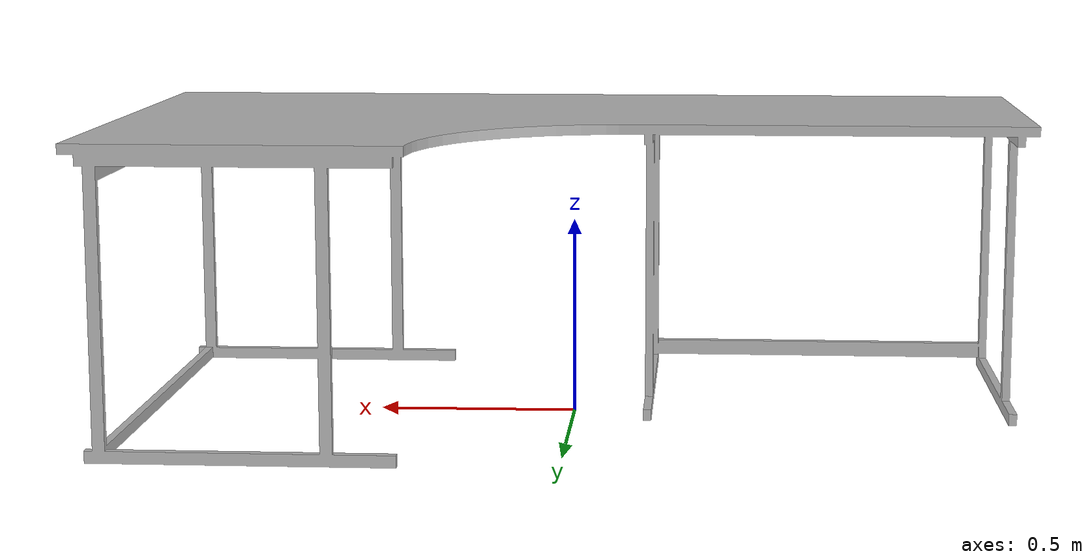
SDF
<?xml version="1.0"?>
<sdf version="1.5">
<model name="stul_l_levy">
	<pose>0 0 0 0 0 0</pose>
	<static>true</static>
	<link name="stul_l_levy_collision">
		<collision name="stul_l_levy_collision">
		<geometry>
			<mesh>
				<uri>model://stul_l_levy/meshes/model.dae</uri>

			</mesh>
		</geometry>
		</collision>
	<visual name="stul_l_levy_mesh">
	<cast_shadows>false</cast_shadows>
		<geometry>
			<mesh>
				<uri> model://stul_l_levy/meshes/model.dae</uri>

			</mesh>
		</geometry>
		<material>
		<script>
			<uri> model://stul_l_levy/material/scripts</uri>
			<uri> model://stul_l_levy/material/textures</uri>
			<name>stul_l_levy/Diffuse</name>
		</script>
		</material>

	</visual>
</link>
</model>
</sdf>
